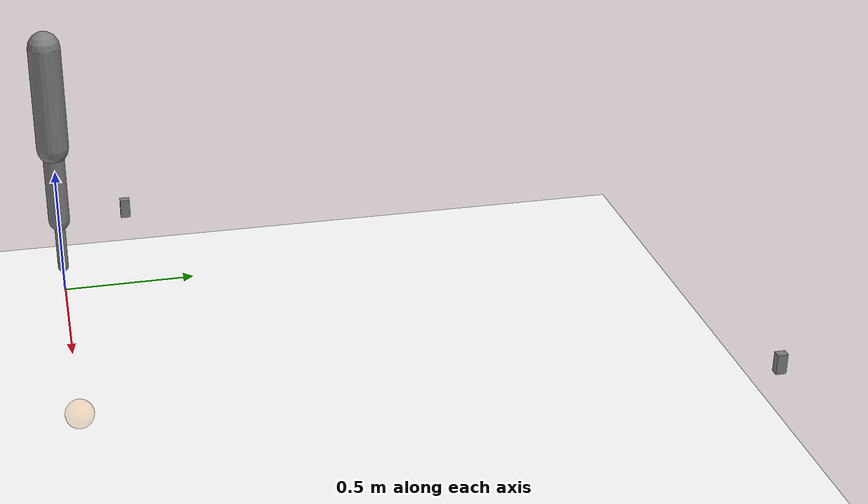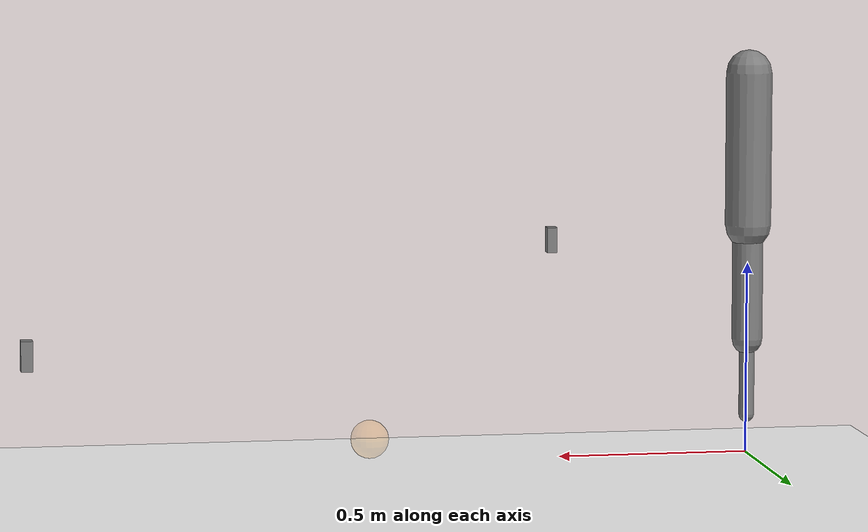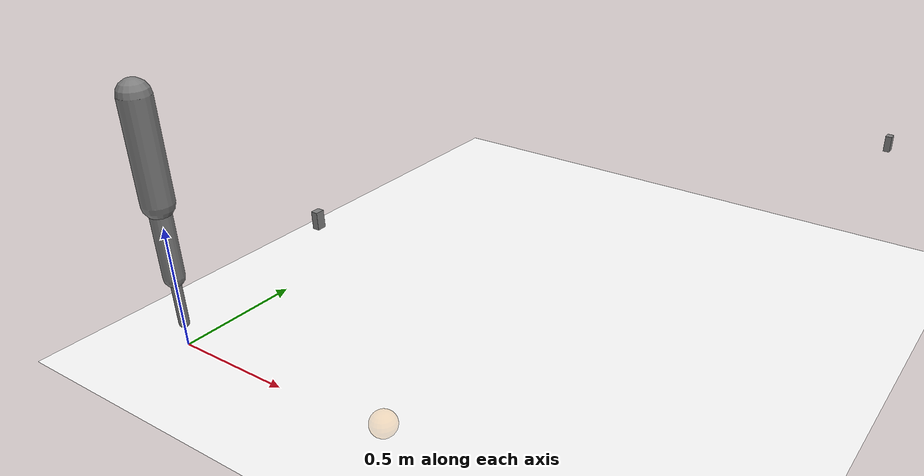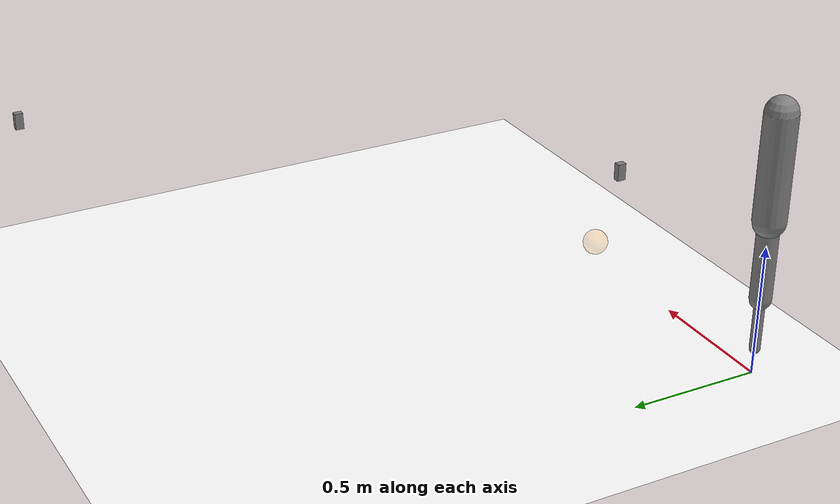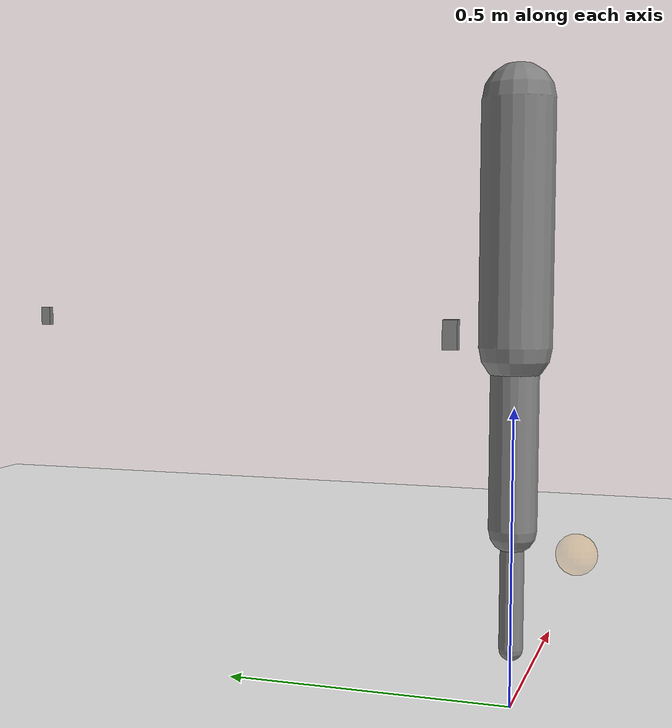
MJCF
<mujoco model="3DOF">
    <option timestep="0.001" gravity="0 0 -9.81" cone="elliptic" integrator="implicitfast" />
    <compiler angle="radian" />

    <visual>
        <headlight ambient="0.4 0.4 0.4" diffuse="0.4 0.4 0.4" specular="0.0 0.0 0.0" active="1" />
    </visual>

    <asset>
        <texture builtin="checker" height="512" name="texplane" rgb1=".2 .3 .4" rgb2=".1 .15 .2" type="2d" width="512" />
        <material name="MatPlane" reflectance="0.5" shininess="0.01" specular="0.1" texrepeat="1 1" texture="texplane" texuniform="true" />
    </asset>

    <worldbody>
        <light pos="0 0 1000" castshadow="false" />
        <geom name="ground_plane" type="plane" size="5 5 10" material="MatPlane" rgba="1 1 1 1"/>

        <body name="base_link">
            <geom type="capsule" fromto="0 0 1  0 0 0.6" size="0.06"/>
            <joint name="balljoint" type="ball" pos="0 0 1"/>
            <body name="middle_link">
                <geom type="capsule" fromto="0 0 0.6  0.0 0 0.3" size="0.04"/>
                <joint name="joint1" type="hinge" pos="0 0 0.6" axis="0 1 0"/>
                <body name="end_link">
                    <geom name="EE" type="capsule" fromto="0 0 0.3  0.0 0 0.1" size="0.02"/>
                    <joint name="joint2" type="hinge" pos="0.0 0 0.3" axis="0 1 0"/>
                </body>
            </body>
        </body>
        <body name="body_ball" pos="1 0 0.06" >
            <freejoint name="ball_freejoint"/>
            <geom name="ball" type="sphere" size="0.05" rgba="1.0 0.55 0.0 0.2" mass="0.1"/>
        </body>
        <body name="immovable" pos="0.56428 0.221972 0.6">
            <geom type="box" size=".0125 .016 .032" rgba=".5 .5 .5 1" />
            <inertial pos="0 0 0" mass="0.1024" diaginertia="4.369e-5 4.028e-5 1.407e-5"/>
            <joint name="joint_eq_element1" type="hinge" pos="0 0 0.6" axis="0 1 0"/>
        </body>
        <body name="connect_eq_element1" pos="2 2 0.6">
            <geom type="box" size=".0125 .016 .032" rgba=".5 .5 .5 1" />
            <inertial pos="0 0 0" mass="0.1024" diaginertia="4.369e-5 4.028e-5 1.407e-5"/>
            <joint name="joint_eq_element2" type="hinge" pos="0 0 0.6" axis="0 1 0"/>
        </body>
    </worldbody>
    <tendon>
        <fixed name="tendon_eq_element1" limited="true" range="-0.3 2">
        <joint joint="joint_eq_element1" coef=".5"/>
        </fixed>
        <fixed name="tendon_eq_element2" limited="true" range="-0.3 2">
        <joint joint="joint_eq_element2" coef=".5"/>
        </fixed>
    </tendon>
    <equality>
        <weld name="weld_eq" body1="immovable" torquescale="0.9" relpose="1.1 1.2 1.3 0.358 -0.003 -0.886 0.295" solref="0.3 0.9" solimp="0.8 0.95 0.002 0.4 2" active="true"/>
    </equality>
    <equality>
        <joint name="joint_eq" joint1="joint_eq_element1" joint2="joint_eq_element2" polycoef="0.5 0.25 0.76 0.66 1" solref="0.3 0.9" solimp="0.8 0.95 0.002 0.4 2" active="true"/>
    </equality>
    <equality>
        <tendon name="tendon_eq" tendon1="tendon_eq_element1" tendon2="tendon_eq_element2" polycoef="0.5 0.25 0.76 0.66 1" solref="0.3 0.9" solimp="0.8 0.95 0.002 0.4 2" active="true"/>
    </equality>
    <equality>
        <connect anchor="0 0 0" name="connect_eq" body1="immovable" solref="0.3 0.9" solimp="0.8 0.95 0.002 0.4 1" active="true"/>
    </equality>

</mujoco>
